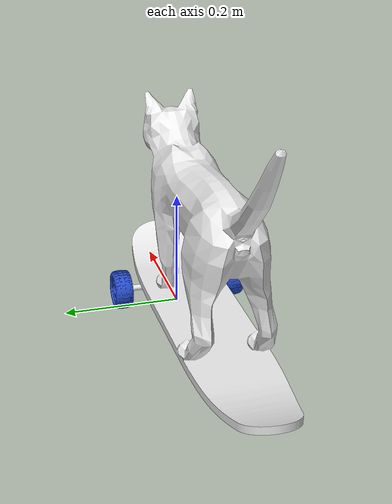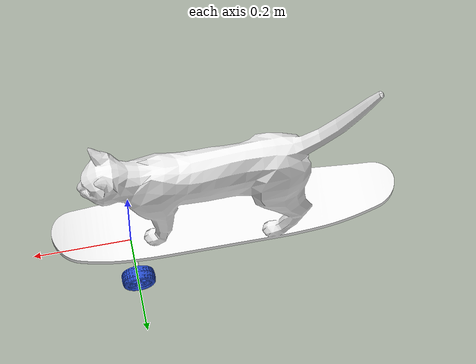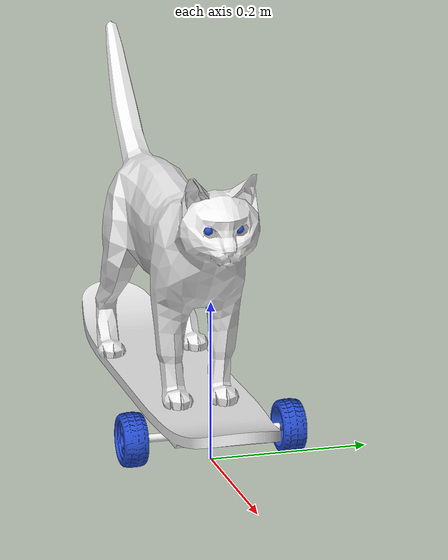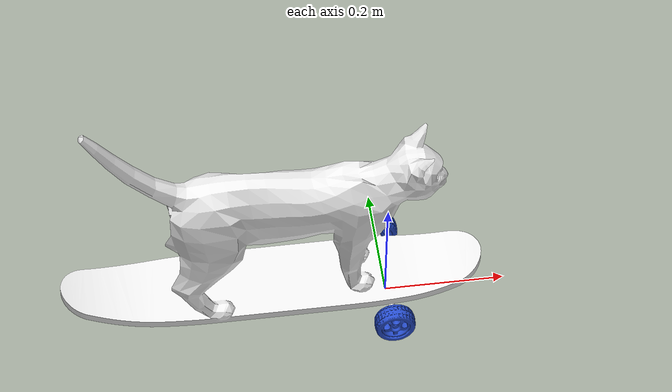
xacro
<?xml version="1.0"?>

<robot name = "tacocat_chassis" xmlns:xacro="http://www.ros.org/wiki/xacro">

    <xacro:include filename="$(find tacocat_description)/urdf/properties.xacro"/>
    <xacro:include filename="$(find tacocat_description)/urdf/chassis.xacro"/>
    <xacro:include filename="$(find tacocat_description)/urdf/wheel.xacro"/>
    <xacro:include filename="$(find tacocat_description)/urdf/camera.xacro"/>
    <xacro:include filename="$(find tacocat_description)/urdf/laser.xacro"/>

    <xacro:chassis/>

    <xacro:tacocam/>

    <xacro:laser/>

    <xacro:wheel
        name="left"
        translation="0 ${wheel_attached_point} 0"
        rotation="0 0 0"
        parent="base_link"
        rotate_wheel="${-Pi/2}"/>

    <xacro:wheel
        name="right"
        translation="0 ${-wheel_attached_point} 0"
        rotation="0 0 0"
        parent="base_link"
        rotate_wheel="${Pi/2}"/>

    <!-- Plugins below are from http://gazebosim.org/tutorials?tut=ros_gzplugins -->

    <gazebo>
        <plugin name="differential_drive_controller" filename="libgazebo_ros_diff_drive.so">
            <!-- Plugin update rate in Hz -->
            <updateRate>100</updateRate>
            <!-- Name of left joint, defaults to `left_joint` -->
            <leftJoint>left_wheel_joint</leftJoint>
            <!-- Name of right joint, defaults to `right_joint` -->
            <rightJoint>right_wheel_joint</rightJoint>
            <!-- The distance from the center of one wheel to the other, in meters, defaults to 0.34 m -->
            <wheelSeparation>${wheel_attached_point*2}</wheelSeparation>
            <!-- Diameter of the wheels, in meters, defaults to 0.15 m -->
            <wheelDiameter>${wheel_radius*2}</wheelDiameter>
            <!-- Wheel acceleration, in rad/s^2, defaults to 0.0 rad/s^2 -->
            <wheelAcceleration>0.0</wheelAcceleration>
            <!-- Maximum torque which the wheels can produce, in Nm, defaults to 5 Nm -->
            <wheelTorque>5</wheelTorque>
            <!-- Topic to receive geometry_msgs/Twist message commands, defaults to `cmd_vel` -->
            <commandTopic>cmd_vel</commandTopic>
            <!-- Topic to publish nav_msgs/Odometry messages, defaults to `odom` -->
            <odometryTopic>odom</odometryTopic>
            <!-- Odometry frame, defaults to `odom` -->
            <odometryFrame>odom</odometryFrame>
            <!-- Robot frame to calculate odometry from, defaults to `base_footprint` -->
            <robotBaseFrame>base_footprint</robotBaseFrame>
            <!-- Odometry source, 0 for ENCODER, 1 for WORLD, defaults to WORLD -->
            <odometrySource>0</odometrySource>
            <!-- Set to true to publish transforms for the wheel links, defaults to false -->
            <publishWheelTF>false</publishWheelTF>
            <!-- Set to true to publish transforms for the odometry, defaults to true -->
            <publishOdom>true</publishOdom>
            <!-- Set to true to publish sensor_msgs/JointState on /joint_states for the wheel joints, defaults to false -->
            <publishWheelJointState>true</publishWheelJointState>
            <!-- Set to true to swap right and left wheels, defaults to true -->
            <legacyMode>false</legacyMode>
        </plugin>
    </gazebo>

</robot>

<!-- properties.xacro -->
<robot xmlns:xacro="http://www.ros.org/wiki/xacro">

    <xacro:property name="Pi" value="3.14159265359"/>

    <!-- wheel properties -->
    <xacro:property name="wheel_radius" value="0.034"/>

    <!-- joints properties (wheels) -->
    <xacro:property name="wheel_effort" value="4"/>
    <xacro:property name="wheel_velocity" value="20"/>
    <xacro:property name="wheel_joint_damp" value="0.24"/>
    <xacro:property name="wheel_attached_point" value="0.1"/>

    <!-- inertial properties (chassis) -->
    <xacro:property name="chassis_cm" value="-0.1 0 0.03"/>
    <xacro:property name="chassis_mass" value="5"/>
    <xacro:property name="chassis_Ixx" value="0.1"/>
    <xacro:property name="chassis_Ixy" value="0"/>
    <xacro:property name="chassis_Ixz" value="0"/>
    <xacro:property name="chassis_Iyy" value="0.3"/>
    <xacro:property name="chassis_Iyz" value="0"/>
    <xacro:property name="chassis_Izz" value="0.1"/>

    <!-- inertial properties (wheels) -->
    <xacro:property name="wheel_cm" value="0 0 0"/>
    <xacro:property name="wheel_mass" value="0.25"/>
    <xacro:property name="wheel_Ixx" value="0.00001"/>
    <xacro:property name="wheel_Ixy" value="0"/>
    <xacro:property name="wheel_Ixz" value="0"/>
    <xacro:property name="wheel_Iyy" value="0.00005"/>
    <xacro:property name="wheel_Iyz" value="0"/>
    <xacro:property name="wheel_Izz" value="0.00001"/>

</robot>

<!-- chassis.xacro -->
<robot name = "tacocat_chassis" xmlns:xacro="http://www.ros.org/wiki/xacro">

    <xacro:macro name="chassis" params="">

        <link name="base_footprint"/>

        <joint name="base_footprint_to_base_link" type="fixed">
            <parent link="base_footprint"/>
            <child link="base_link"/>
            <origin rpy="0 0 0" xyz="0 0 0.034"/>
        </joint>

        <link name="base_link">
            <inertial>
                <origin rpy="0 0 0" xyz="${chassis_cm}"/>
                <mass value="${chassis_mass}"/>
                <inertia
                    ixx="${chassis_Ixx}"
                    ixy="${chassis_Ixy}"
                    ixz="${chassis_Ixz}"
                    iyy="${chassis_Iyy}"
                    iyz="${chassis_Iyz}"
                    izz="${chassis_Izz}"/>
            </inertial>
            <visual>
                <geometry>
                    <mesh filename="package://tacocat_description/mesh/base_link.STL"/>
                </geometry>
            </visual>
            <collision>
                <origin xyz="-0.193 0 0.218" rpy="0 0 0"/>
                <geometry>
                    <box size="0.703 0.154 0.435"/>
                </geometry>
            </collision>
        </link>

        <joint name="base_link_to_caster" type="fixed">
            <parent link="base_link"/>
            <child link="caster_wheel"/>
            <origin rpy="0 0 0" xyz="-0.35 0 0"/>
            </joint>

        <link name="caster_wheel">
            <collision>
                <origin rpy="0 0 0" xyz="0.0045 0 0.002"/>
                <geometry>
                    <sphere radius="0.035"/>
                </geometry>
            </collision>
        </link>

        <gazebo reference="caster_wheel">
            <mu1>0</mu1>
            <mu2>0</mu2>
        </gazebo>

        <gazebo reference="base_link">
            <mu1>0.5</mu1>
            <mu2>0.5</mu2>
            <material>Gazebo/White</material>
        </gazebo>

    </xacro:macro>

</robot>

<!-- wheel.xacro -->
<robot name="wheel" xmlns:xacro="http://www.ros.org/wiki/xacro">

    <xacro:include filename="$(find tacocat_description)/urdf/properties.xacro"/>

    <xacro:macro name="wheel" params="name translation rotation parent rotate_wheel">

        <link name="${name}_wheel">
            <visual>
            <origin rpy="${rotate_wheel} 0 0" xyz="0 0 0"/>
                <geometry>
                    <mesh filename="package://tacocat_description/mesh/wheel.STL"/>
                </geometry>
            </visual>
            <inertial>
                <origin rpy="0 0 0" xyz="${wheel_cm}"/>
                <mass value="${wheel_mass}"/>
                <inertia
                    ixx="${wheel_Ixx}"
                    ixy="${wheel_Ixy}"
                    ixz="${wheel_Ixz}"
                    iyy="${wheel_Iyy}"
                    iyz="${wheel_Iyz}"
                    izz="${wheel_Izz}"/>
            </inertial>
            <collision>
                <origin rpy="${Pi/2} 0 0" xyz="0 0 0"/>
                <geometry>
                    <cylinder length="0.03" radius="${wheel_radius}"/>
                </geometry>
            </collision>
        </link>

        <joint name="${name}_wheel_joint" type="continuous">
            <origin xyz="${translation}" rpy="${rotation}"/>
            <parent link="${parent}"/>
            <child link="${name}_wheel"/>
            <axis xyz="0 1 0"/>
            <limit effort="${wheel_effort}" velocity="${wheel_velocity}"/>
            <dynamics damping="${wheel_joint_damp}"/>
        </joint>

        <gazebo>
            <plugin name="gazebo_ros_control" filename="libgazebo_ros_control.so">
                <robotNamespace>tacocat</robotNamespace>
            </plugin>
        </gazebo>

        <gazebo reference="${name}_wheel">
            <mu1>1</mu1>
            <mu2>1</mu2>
            <material>Gazebo/Blue</material>
        </gazebo>

        <transmission name="${name}_wheel_transmission">
            <type>transmission_interface/SimpleTransmission</type>
            <joint name="${name}_wheel_joint">
                <hardwareInterface>hardware_interface/EffortJointInterface</hardwareInterface>
            </joint>
            <actuator name="${name}_wheel_motor">
                <hardwareInterface>hardware_interface/EffortJointInterface</hardwareInterface>
                <mechanicalReduction>1</mechanicalReduction>
            </actuator>
        </transmission>

    </xacro:macro>

</robot>

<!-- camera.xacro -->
<robot name = "tacocat_camera" xmlns:xacro="http://www.ros.org/wiki/xacro">
    <xacro:macro name="tacocam" params="">

        <link name="camera_link">
            <visual>
                <origin xyz="0 0 0" rpy="0 0 0"/>
                <geometry>
                    <sphere radius="0.005"/>
                </geometry>
                <material name="blue"/>
            </visual>
        </link>

        <joint name="camera_joint" type="fixed">
            <origin xyz="0.068 -0.022 0.272" rpy="0 0 0"/>
            <parent link="base_link"/>
            <child link="camera_link"/>
        </joint>

    <!-- camera -->
        <gazebo reference="camera_link">
            <material>Gazebo/Black</material>
            <sensor type="camera" name="camera1">
            <update_rate>60.0</update_rate>
            <camera name="head">
                <horizontal_fov>1.5708</horizontal_fov>
                <image>
                    <width>2560</width>
                    <height>720</height>
                    <format>R8G8B8</format>
                </image>
                <clip>
                    <near>0.035</near>
                    <far>300</far>
                </clip>
                <noise>
                    <type>gaussian</type>
                    <mean>0.0</mean>
                    <stddev>0.007</stddev>
                </noise>
            </camera>
            <plugin name="camera_controller" filename="libgazebo_ros_camera.so">
                <alwaysOn>true</alwaysOn>
                <updateRate>0.0</updateRate>
                <cameraName>tacocat/tacocam</cameraName>
                <imageTopicName>image</imageTopicName>
                <cameraInfoTopicName>camera_info</cameraInfoTopicName>
                <frameName>camera_link</frameName>
                <hackBaseline>0.07</hackBaseline>
                <distortionK1>0.0</distortionK1>
                <distortionK2>0.0</distortionK2>
                <distortionK3>0.0</distortionK3>
                <distortionT1>0.0</distortionT1>
                <distortionT2>0.0</distortionT2>
            </plugin>
            </sensor>
        </gazebo>

    </xacro:macro>
</robot>

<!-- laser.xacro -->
<robot name = "tacocat_laser" xmlns:xacro="http://www.ros.org/wiki/xacro">
    <xacro:macro name="laser" params="">

        <link name="laser_link">
            <visual>
                <origin xyz="0 0 0" rpy="0 0 0"/>
                <geometry>
                    <sphere radius="0.005"/>
                </geometry>
                <material name="blue"/>
            </visual>
        </link>

        <joint name="laser_joint" type="fixed">
            <origin xyz="0.068 0.016 0.272" rpy="0 0 0"/>
            <parent link="base_link"/>
            <child link="laser_link"/>
        </joint>

<!-- laser-->
        <gazebo reference="laser_link">
            <sensor type="ray" name="tacocat_laser">
                <pose>0 0 0 0 0 0</pose>
                <visualize>true</visualize>
                <update_rate>40</update_rate>
                <ray>
                    <scan>
                        <horizontal>
                            <samples>720</samples>
                            <resolution>1</resolution>
                            <min_angle>-1.570796</min_angle>
                            <max_angle>1.570796</max_angle>
                        </horizontal>
                    </scan>
                    <range>
                        <min>0.20</min>
                        <max>10.0</max>
                        <resolution>0.01</resolution>
                    </range>
                    <noise>
                        <type>gaussian</type>
                        <mean>0.0</mean>
                        <stddev>0.01</stddev>
                    </noise>
                </ray>
                <plugin name="gazebo_ros_head_hokuyo_controller" filename="libgazebo_ros_laser.so">
                    <topicName>/tacocat/laser/scan</topicName>
                    <frameName>laser_link</frameName>
                </plugin>
            </sensor>
        </gazebo>

    </xacro:macro>
</robot>
